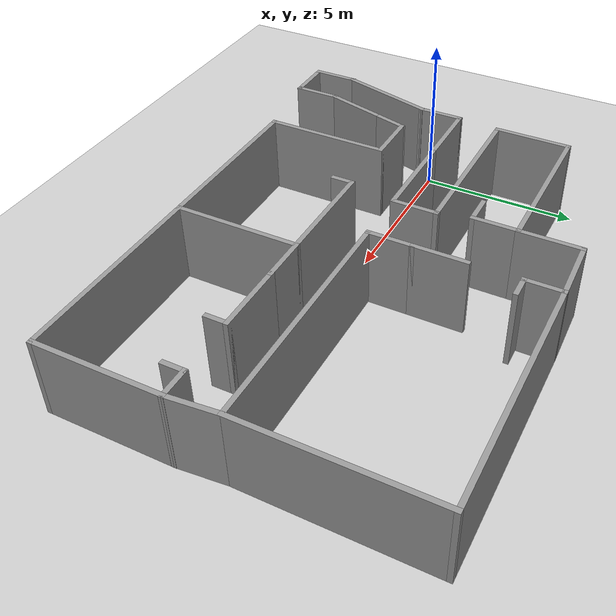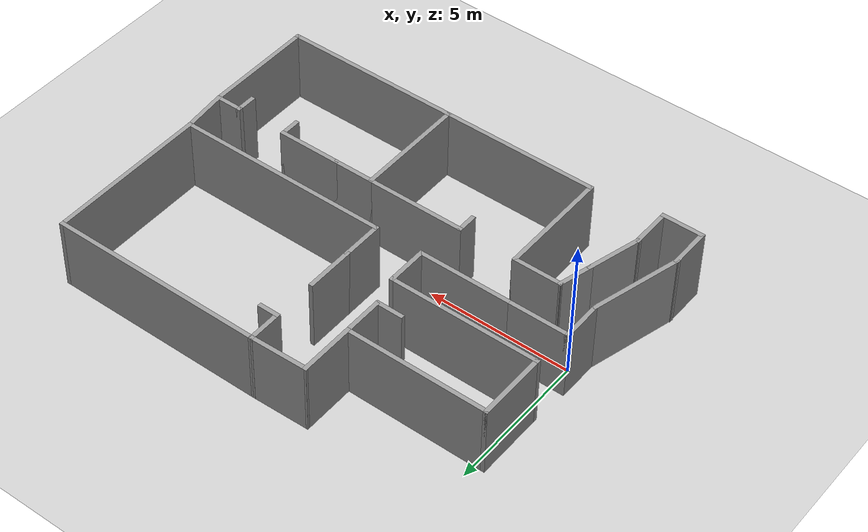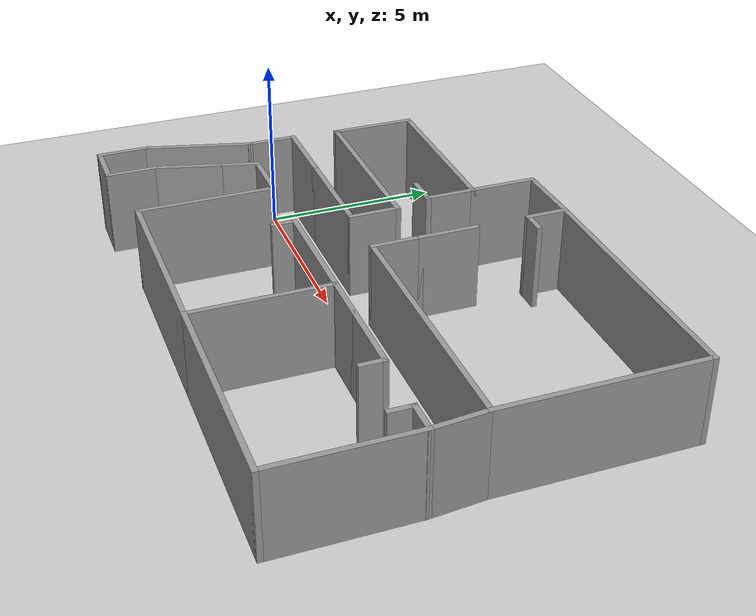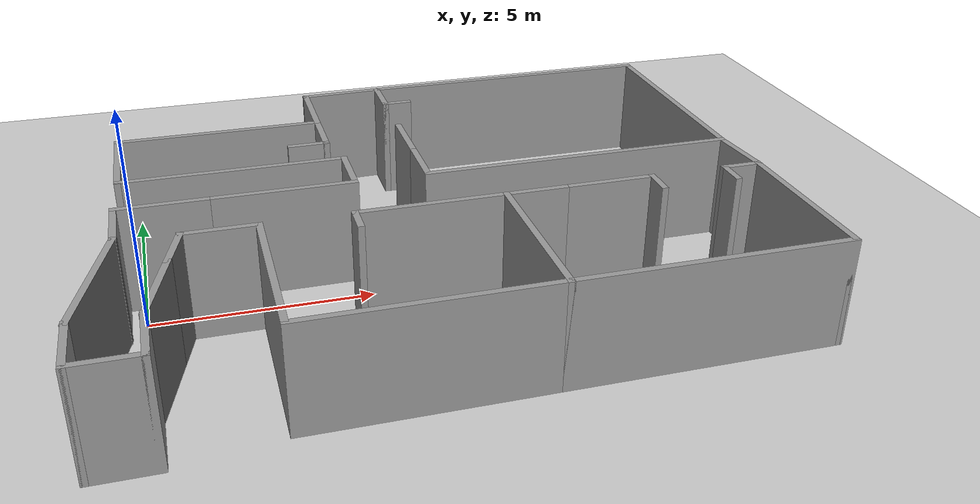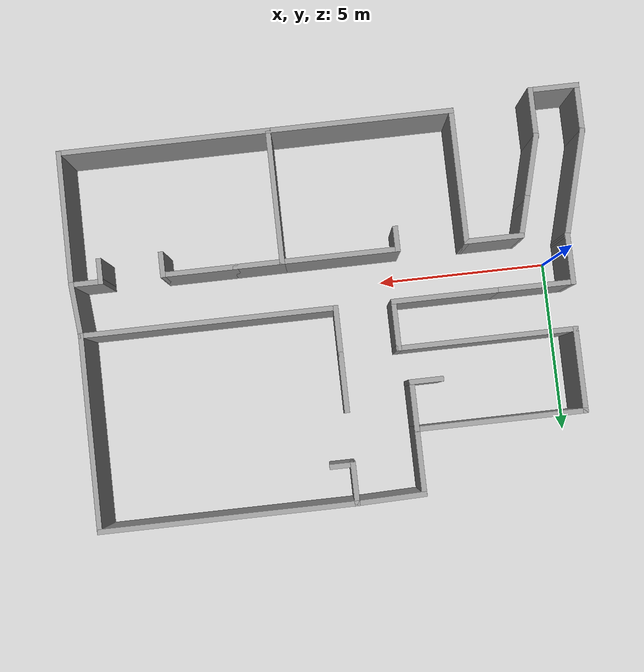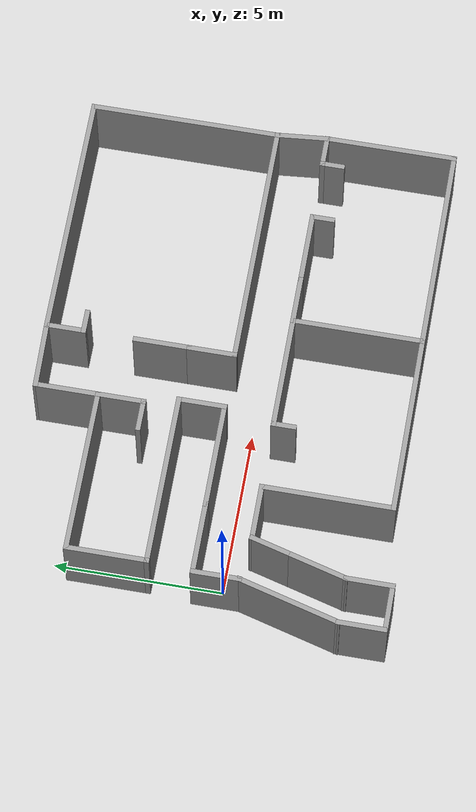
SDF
<sdf version="1.6">
 <world name="default">
  <light name="sun" type="directional">
   <pose>0 0 10 0 -0 0</pose>
   <diffuse>0.8 0.8 0.8 1</diffuse>
   <specular>0.2 0.2 0.2 1</specular>
   <attenuation>
    <range>1000</range>
    <constant>0.9</constant>
    <linear>0.01</linear>
    <quadratic>0.001</quadratic>
   </attenuation>
   <direction>-0.5 0.1 -0.9</direction>
  </light>
  <model name="ground_plane">
   <static>1</static>
   <link name="link">
    <collision name="collision">
     <geometry><plane><normal>0 0 1</normal><size>100 100</size></plane></geometry>
     <surface>
      <contact><collide_bitmask>65535</collide_bitmask></contact>
      <friction><ode><mu>100</mu><mu2>50</mu2></ode></friction>
     </surface>
    </collision>
    <visual name="visual">
     <cast_shadows>0</cast_shadows>
     <geometry><plane><normal>0 0 1</normal><size>100 100</size></plane></geometry>
     <material>
      <script><uri>file://media/materials/scripts/gazebo.material</uri><name>Gazebo/Grey</name></script>
     </material>
    </visual>
   </link>
  </model>
  <gravity>0 0 -9.8</gravity>
  <magnetic_field>6e-06 2.3e-05 -4.2e-05</magnetic_field>
  <atmosphere type="adiabatic"/>
  <physics name="default_physics" default="0" type="ode">
   <max_step_size>0.001</max_step_size>
   <real_time_factor>1</real_time_factor>
   <real_time_update_rate>1000</real_time_update_rate>
  </physics>
  <scene><ambient>0.4 0.4 0.4 1</ambient><background>0.7 0.7 0.7 1</background><shadows>1</shadows></scene>
  <audio><device>default</device></audio>
  <spherical_coordinates>
   <surface_model>EARTH_WGS84</surface_model>
   <latitude_deg>0</latitude_deg>
   <longitude_deg>0</longitude_deg>
   <elevation>0</elevation>
   <heading_deg>0</heading_deg>
  </spherical_coordinates>
  <model name="KGCOE_Training">
   <pose>6.37659 0.74694 0 0 -0 0</pose>
   <link name="Wall_0">
    <collision name="Wall_0_Collision">
     <geometry><box><size>1.5 0.15 2.5</size></box></geometry>
     <pose>0 0 1.25 0 -0 0</pose>
    </collision>
    <visual name="Wall_0_Visual">
     <pose>0 0 1.25 0 -0 0</pose>
     <geometry><box><size>1.5 0.15 2.5</size></box></geometry>
     <material>
      <script><uri>file://media/materials/scripts/gazebo.material</uri><name>Gazebo/Grey</name></script>
      <ambient>1 1 1 1</ambient>
     </material>
     <meta><layer>0</layer></meta>
    </visual>
    <pose>-7.57659 -4.97194 0 0 -0 -1.5708</pose>
   </link>
   <link name="Wall_1">
    <collision name="Wall_1_Collision">
     <geometry><box><size>1.5 0.15 2.5</size></box></geometry>
     <pose>0 0 1.25 0 -0 0</pose>
    </collision>
    <visual name="Wall_1_Visual">
     <pose>0 0 1.25 0 -0 0</pose>
     <geometry><box><size>1.5 0.15 2.5</size></box></geometry>
     <material>
      <script><uri>file://media/materials/scripts/gazebo.material</uri><name>Gazebo/Grey</name></script>
      <ambient>1 1 1 1</ambient>
     </material>
     <meta><layer>0</layer></meta>
    </visual>
    <pose>-6.90159 -5.64694 0 0 -0 0</pose>
   </link>
   <link name="Wall_11">
    <collision name="Wall_11_Collision">
     <geometry><box><size>1.75 0.15 2.5</size></box></geometry>
     <pose>0 0 1.25 0 -0 0</pose>
    </collision>
    <visual name="Wall_11_Visual">
     <pose>0 0 1.25 0 -0 0</pose>
     <geometry><box><size>1.75 0.15 2.5</size></box></geometry>
     <material>
      <script><uri>file://media/materials/scripts/gazebo.material</uri><name>Gazebo/Grey</name></script>
      <ambient>1 1 1 1</ambient>
     </material>
     <meta><layer>0</layer></meta>
    </visual>
    <pose>-4.66308 -1.44746 0 0 -0 0</pose>
   </link>
   <link name="Wall_12">
    <collision name="Wall_12_Collision">
     <geometry><box><size>4 0.15 2.5</size></box></geometry>
     <pose>0 0 1.25 0 -0 0</pose>
    </collision>
    <visual name="Wall_12_Visual">
     <pose>0 0 1.25 0 -0 0</pose>
     <geometry><box><size>4 0.15 2.5</size></box></geometry>
     <material>
      <script><uri>file://media/materials/scripts/gazebo.material</uri><name>Gazebo/Grey</name></script>
      <ambient>1 1 1 1</ambient>
     </material>
     <meta><layer>0</layer></meta>
    </visual>
    <pose>-3.86307 -3.37246 0 0 -0 -1.5708</pose>
   </link>
   <link name="Wall_13">
    <collision name="Wall_13_Collision">
     <geometry><box><size>5.5 0.15 2.5</size></box></geometry>
     <pose>0 0 1.25 0 -0 0</pose>
    </collision>
    <visual name="Wall_13_Visual">
     <pose>0 0 1.25 0 -0 0</pose>
     <geometry><box><size>5.5 0.15 2.5</size></box></geometry>
     <material>
      <script><uri>file://media/materials/scripts/gazebo.material</uri><name>Gazebo/Grey</name></script>
      <ambient>1 1 1 1</ambient>
     </material>
     <meta><layer>0</layer></meta>
    </visual>
    <pose>-1.18807 -5.29746 0 0 -0 0</pose>
   </link>
   <link name="Wall_14">
    <collision name="Wall_14_Collision">
     <geometry><box><size>4 0.15 2.5</size></box></geometry>
     <pose>0 0 1.25 0 -0 0</pose>
    </collision>
    <visual name="Wall_14_Visual">
     <pose>0 0 1.25 0 -0 0</pose>
     <geometry><box><size>4 0.15 2.5</size></box></geometry>
     <material>
      <script><uri>file://media/materials/scripts/gazebo.material</uri><name>Gazebo/Grey</name></script>
      <ambient>1 1 1 1</ambient>
     </material>
     <meta><layer>0</layer></meta>
    </visual>
    <pose>1.48693 -3.37246 0 0 -0 1.5708</pose>
   </link>
   <link name="Wall_15">
    <collision name="Wall_15_Collision">
     <geometry><box><size>3.5 0.15 2.5</size></box></geometry>
     <pose>0 0 1.25 0 -0 0</pose>
    </collision>
    <visual name="Wall_15_Visual">
     <pose>0 0 1.25 0 -0 0</pose>
     <geometry><box><size>3.5 0.15 2.5</size></box></geometry>
     <material>
      <script><uri>file://media/materials/scripts/gazebo.material</uri><name>Gazebo/Grey</name></script>
      <ambient>1 1 1 1</ambient>
     </material>
     <meta><layer>0</layer></meta>
    </visual>
    <pose>-0.188075 -1.44746 0 0 -0 3.14159</pose>
   </link>
   <link name="Wall_17">
    <collision name="Wall_17_Collision">
     <geometry><box><size>0.75 0.15 2.5</size></box></geometry>
     <pose>0 0 1.25 0 -0 0</pose>
    </collision>
    <visual name="Wall_17_Visual">
     <pose>0 0 1.25 0 -0 0</pose>
     <geometry><box><size>0.75 0.15 2.5</size></box></geometry>
     <material>
      <script><uri>file://media/materials/scripts/gazebo.material</uri><name>Gazebo/Grey</name></script>
      <ambient>1 1 1 1</ambient>
     </material>
     <meta><layer>0</layer></meta>
    </visual>
    <pose>-1.86308 -1.74746 0 0 -0 -1.5708</pose>
   </link>
   <link name="Wall_19">
    <collision name="Wall_19_Collision">
     <geometry><box><size>3.25 0.15 2.5</size></box></geometry>
     <pose>0 0 1.25 0 -0 0</pose>
    </collision>
    <visual name="Wall_19_Visual">
     <pose>0 0 1.25 0 -0 0</pose>
     <geometry><box><size>3.25 0.15 2.5</size></box></geometry>
     <material>
      <script><uri>file://media/materials/scripts/gazebo.material</uri><name>Gazebo/Grey</name></script>
      <ambient>1 1 1 1</ambient>
     </material>
     <meta><layer>0</layer></meta>
    </visual>
    <pose>-3.12425 0.04743 0 0 -0 0</pose>
   </link>
   <link name="Wall_2">
    <collision name="Wall_2_Collision">
     <geometry><box><size>1.5 0.15 2.5</size></box></geometry>
     <pose>0 0 1.25 0 -0 0</pose>
    </collision>
    <visual name="Wall_2_Visual">
     <pose>0 0 1.25 0 -0 0</pose>
     <geometry><box><size>1.5 0.15 2.5</size></box></geometry>
     <material>
      <script><uri>file://media/materials/scripts/gazebo.material</uri><name>Gazebo/Grey</name></script>
      <ambient>1 1 1 1</ambient>
     </material>
     <meta><layer>0</layer></meta>
    </visual>
    <pose>-6.22659 -4.97194 0 0 -0 1.5708</pose>
   </link>
   <link name="Wall_20">
    <collision name="Wall_20_Collision">
     <geometry><box><size>1.5 0.15 2.5</size></box></geometry>
     <pose>0 0 1.25 0 -0 0</pose>
    </collision>
    <visual name="Wall_20_Visual">
     <pose>0 0 1.25 0 -0 0</pose>
     <geometry><box><size>1.5 0.15 2.5</size></box></geometry>
     <material>
      <script><uri>file://media/materials/scripts/gazebo.material</uri><name>Gazebo/Grey</name></script>
      <ambient>1 1 1 1</ambient>
     </material>
     <meta><layer>0</layer></meta>
    </visual>
    <pose>-1.57425 0.72243 0 0 -0 1.5708</pose>
   </link>
   <link name="Wall_21">
    <collision name="Wall_21_Collision">
     <geometry><box><size>5.25 0.15 2.5</size></box></geometry>
     <pose>0 0 1.25 0 -0 0</pose>
    </collision>
    <visual name="Wall_21_Visual">
     <pose>0 0 1.25 0 -0 0</pose>
     <geometry><box><size>5.25 0.15 2.5</size></box></geometry>
     <material>
      <script><uri>file://media/materials/scripts/gazebo.material</uri><name>Gazebo/Grey</name></script>
      <ambient>1 1 1 1</ambient>
     </material>
     <meta><layer>0</layer></meta>
    </visual>
    <pose>-4.12425 1.39743 0 0 -0 3.14159</pose>
   </link>
   <link name="Wall_22">
    <collision name="Wall_22_Collision">
     <geometry><box><size>2.5 0.15 2.5</size></box></geometry>
     <pose>0 0 1.25 0 -0 0</pose>
    </collision>
    <visual name="Wall_22_Visual">
     <pose>0 0 1.25 0 -0 0</pose>
     <geometry><box><size>2.5 0.15 2.5</size></box></geometry>
     <material>
      <script><uri>file://media/materials/scripts/gazebo.material</uri><name>Gazebo/Grey</name></script>
      <ambient>1 1 1 1</ambient>
     </material>
     <meta><layer>0</layer></meta>
    </visual>
    <pose>-6.67425 2.57243 0 0 -0 1.5708</pose>
   </link>
   <link name="Wall_23">
    <collision name="Wall_23_Collision">
     <geometry><box><size>5 0.15 2.5</size></box></geometry>
     <pose>0 0 1.25 0 -0 0</pose>
    </collision>
    <visual name="Wall_23_Visual">
     <pose>0 0 1.25 0 -0 0</pose>
     <geometry><box><size>5 0.15 2.5</size></box></geometry>
     <material>
      <script><uri>file://media/materials/scripts/gazebo.material</uri><name>Gazebo/Grey</name></script>
      <ambient>1 1 1 1</ambient>
     </material>
     <meta><layer>0</layer></meta>
    </visual>
    <pose>-4.24925 3.74743 0 0 -0 0</pose>
   </link>
   <link name="Wall_24">
    <collision name="Wall_24_Collision">
     <geometry><box><size>1.5 0.15 2.5</size></box></geometry>
     <pose>0 0 1.25 0 -0 0</pose>
    </collision>
    <visual name="Wall_24_Visual">
     <pose>0 0 1.25 0 -0 0</pose>
     <geometry><box><size>1.5 0.15 2.5</size></box></geometry>
     <material>
      <script><uri>file://media/materials/scripts/gazebo.material</uri><name>Gazebo/Grey</name></script>
      <ambient>1 1 1 1</ambient>
     </material>
     <meta><layer>0</layer></meta>
    </visual>
    <pose>-1.82425 3.07243 0 0 -0 -1.5708</pose>
   </link>
   <link name="Wall_26">
    <collision name="Wall_26_Collision">
     <geometry><box><size>1.5 0.15 2.5</size></box></geometry>
     <pose>0 0 1.25 0 -0 0</pose>
    </collision>
    <visual name="Wall_26_Visual">
     <pose>0 0 1.25 0 -0 0</pose>
     <geometry><box><size>1.5 0.15 2.5</size></box></geometry>
     <material>
      <script><uri>file://media/materials/scripts/gazebo.material</uri><name>Gazebo/Grey</name></script>
      <ambient>1 1 1 1</ambient>
     </material>
     <meta><layer>0</layer></meta>
    </visual>
    <pose>0.100346 0.720105 0 0 -0 -1.5708</pose>
   </link>
   <link name="Wall_27">
    <collision name="Wall_27_Collision">
     <geometry><box><size>7.5 0.15 2.5</size></box></geometry>
     <pose>0 0 1.25 0 -0 0</pose>
    </collision>
    <visual name="Wall_27_Visual">
     <pose>0 0 1.25 0 -0 0</pose>
     <geometry><box><size>7.5 0.15 2.5</size></box></geometry>
     <material>
      <script><uri>file://media/materials/scripts/gazebo.material</uri><name>Gazebo/Grey</name></script>
      <ambient>1 1 1 1</ambient>
     </material>
     <meta><layer>0</layer></meta>
    </visual>
    <pose>3.77535 0.045105 0 0 -0 0</pose>
   </link>
   <link name="Wall_28">
    <collision name="Wall_28_Collision">
     <geometry><box><size>5.75 0.15 2.5</size></box></geometry>
     <pose>0 0 1.25 0 -0 0</pose>
    </collision>
    <visual name="Wall_28_Visual">
     <pose>0 0 1.25 0 -0 0</pose>
     <geometry><box><size>5.75 0.15 2.5</size></box></geometry>
     <material>
      <script><uri>file://media/materials/scripts/gazebo.material</uri><name>Gazebo/Grey</name></script>
      <ambient>1 1 1 1</ambient>
     </material>
     <meta><layer>0</layer></meta>
    </visual>
    <pose>7.45035 2.84511 0 0 -0 1.5708</pose>
   </link>
   <link name="Wall_29">
    <collision name="Wall_29_Collision">
     <geometry><box><size>7.5 0.15 2.5</size></box></geometry>
     <pose>0 0 1.25 0 -0 0</pose>
    </collision>
    <visual name="Wall_29_Visual">
     <pose>0 0 1.25 0 -0 0</pose>
     <geometry><box><size>7.5 0.15 2.5</size></box></geometry>
     <material>
      <script><uri>file://media/materials/scripts/gazebo.material</uri><name>Gazebo/Grey</name></script>
      <ambient>1 1 1 1</ambient>
     </material>
     <meta><layer>0</layer></meta>
    </visual>
    <pose>3.77535 5.64511 0 0 -0 3.14159</pose>
   </link>
   <link name="Wall_3">
    <collision name="Wall_3_Collision">
     <geometry><box><size>2 0.15 2.5</size></box></geometry>
     <pose>0 0 1.25 0 -0 0</pose>
    </collision>
    <visual name="Wall_3_Visual">
     <pose>0 0 1.25 0 -0 0</pose>
     <geometry><box><size>2 0.15 2.5</size></box></geometry>
     <material>
      <script><uri>file://media/materials/scripts/gazebo.material</uri><name>Gazebo/Grey</name></script>
      <ambient>1 1 1 1</ambient>
     </material>
     <meta><layer>0</layer></meta>
    </visual>
    <pose>-5.98718 -3.40346 0 0 -0 1.309</pose>
   </link>
   <link name="Wall_30">
    <collision name="Wall_30_Collision">
     <geometry><box><size>1.25 0.15 2.5</size></box></geometry>
     <pose>0 0 1.25 0 -0 0</pose>
    </collision>
    <visual name="Wall_30_Visual">
     <pose>0 0 1.25 0 -0 0</pose>
     <geometry><box><size>1.25 0.15 2.5</size></box></geometry>
     <material>
      <script><uri>file://media/materials/scripts/gazebo.material</uri><name>Gazebo/Grey</name></script>
      <ambient>1 1 1 1</ambient>
     </material>
     <meta><layer>0</layer></meta>
    </visual>
    <pose>0.100346 5.09511 0 0 -0 -1.5708</pose>
   </link>
   <link name="Wall_32">
    <collision name="Wall_32_Collision">
     <geometry><box><size>1.75 0.15 2.5</size></box></geometry>
     <pose>0 0 1.25 0 -0 0</pose>
    </collision>
    <visual name="Wall_32_Visual">
     <pose>0 0 1.25 0 -0 0</pose>
     <geometry><box><size>1.75 0.15 2.5</size></box></geometry>
     <material>
      <script><uri>file://media/materials/scripts/gazebo.material</uri><name>Gazebo/Grey</name></script>
      <ambient>1 1 1 1</ambient>
     </material>
     <meta><layer>0</layer></meta>
    </visual>
    <pose>0.100346 2.1951 0 0 -0 1.5708</pose>
   </link>
   <link name="Wall_34">
    <collision name="Wall_34_Collision">
     <geometry><box><size>0.75 0.15 2.5</size></box></geometry>
     <pose>0 0 1.25 0 -0 0</pose>
    </collision>
    <visual name="Wall_34_Visual">
     <pose>0 0 1.25 0 -0 0</pose>
     <geometry><box><size>0.75 0.15 2.5</size></box></geometry>
     <material>
      <script><uri>file://media/materials/scripts/gazebo.material</uri><name>Gazebo/Grey</name></script>
      <ambient>1 1 1 1</ambient>
     </material>
     <meta><layer>0</layer></meta>
    </visual>
    <pose>0.400346 4.54511 0 0 -0 0</pose>
   </link>
   <link name="Wall_36">
    <collision name="Wall_36_Collision">
     <geometry><box><size>1 0.15 2.5</size></box></geometry>
     <pose>0 0 1.25 0 -0 0</pose>
    </collision>
    <visual name="Wall_36_Visual">
     <pose>0 0 1.25 0 -0 0</pose>
     <geometry><box><size>1 0.15 2.5</size></box></geometry>
     <material>
      <script><uri>file://media/materials/scripts/gazebo.material</uri><name>Gazebo/Grey</name></script>
      <ambient>1 1 1 1</ambient>
     </material>
     <meta><layer>0</layer></meta>
    </visual>
    <pose>-2.24925 2.39743 0 0 -0 3.14159</pose>
   </link>
   <link name="Wall_38">
    <collision name="Wall_38_Collision">
     <geometry><box><size>2 0.15 2.5</size></box></geometry>
     <pose>0 0 1.25 0 -0 0</pose>
    </collision>
    <visual name="Wall_38_Visual">
     <pose>0 0 1.25 0 -0 0</pose>
     <geometry><box><size>2 0.15 2.5</size></box></geometry>
     <material>
      <script><uri>file://media/materials/scripts/gazebo.material</uri><name>Gazebo/Grey</name></script>
      <ambient>1 1 1 1</ambient>
     </material>
     <meta><layer>0</layer></meta>
    </visual>
    <pose>-1.82425 4.67243 0 0 -0 1.5708</pose>
   </link>
   <link name="Wall_39">
    <collision name="Wall_39_Collision">
     <geometry><box><size>2.07519 0.15 2.5</size></box></geometry>
     <pose>0 0 1.25 0 -0 0</pose>
    </collision>
    <visual name="Wall_39_Visual">
     <pose>0 0 1.25 0 -0 0</pose>
     <geometry><box><size>2.07519 0.15 2.5</size></box></geometry>
     <material>
      <script><uri>file://media/materials/scripts/gazebo.material</uri><name>Gazebo/Grey</name></script>
      <ambient>1 1 1 1</ambient>
     </material>
     <meta><layer>0</layer></meta>
    </visual>
    <pose>-0.861953 5.62127 0 0 -0 0.024766</pose>
   </link>
   <link name="Wall_4">
    <collision name="Wall_4_Collision">
     <geometry><box><size>1.25 0.15 2.5</size></box></geometry>
     <pose>0 0 1.25 0 -0 0</pose>
    </collision>
    <visual name="Wall_4_Visual">
     <pose>0 0 1.25 0 -0 0</pose>
     <geometry><box><size>1.25 0.15 2.5</size></box></geometry>
     <material>
      <script><uri>file://media/materials/scripts/gazebo.material</uri><name>Gazebo/Grey</name></script>
      <ambient>1 1 1 1</ambient>
     </material>
     <meta><layer>0</layer></meta>
    </visual>
    <pose>-5.60543 -1.97872 0 0 -0 1.309</pose>
   </link>
   <link name="Wall_41">
    <collision name="Wall_41_Collision">
     <geometry><box><size>1.5 0.15 2.5</size></box></geometry>
     <pose>0 0 1.25 0 -0 0</pose>
    </collision>
    <visual name="Wall_41_Visual">
     <pose>0 0 1.25 0 -0 0</pose>
     <geometry><box><size>1.5 0.15 2.5</size></box></geometry>
     <material>
      <script><uri>file://media/materials/scripts/gazebo.material</uri><name>Gazebo/Grey</name></script>
      <ambient>1 1 1 1</ambient>
     </material>
     <meta><layer>0</layer></meta>
    </visual>
    <pose>2.16193 -1.44746 0 0 -0 0</pose>
   </link>
   <link name="Wall_43">
    <collision name="Wall_43_Collision">
     <geometry><box><size>6.25 0.15 2.5</size></box></geometry>
     <pose>0 0 1.25 0 -0 0</pose>
    </collision>
    <visual name="Wall_43_Visual">
     <pose>0 0 1.25 0 -0 0</pose>
     <geometry><box><size>6.25 0.15 2.5</size></box></geometry>
     <material>
      <script><uri>file://media/materials/scripts/gazebo.material</uri><name>Gazebo/Grey</name></script>
      <ambient>1 1 1 1</ambient>
     </material>
     <meta><layer>0</layer></meta>
    </visual>
    <pose>4.53693 -5.29746 0 0 -0 0</pose>
   </link>
   <link name="Wall_44">
    <collision name="Wall_44_Collision">
     <geometry><box><size>4 0.15 2.5</size></box></geometry>
     <pose>0 0 1.25 0 -0 0</pose>
    </collision>
    <visual name="Wall_44_Visual">
     <pose>0 0 1.25 0 -0 0</pose>
     <geometry><box><size>4 0.15 2.5</size></box></geometry>
     <material>
      <script><uri>file://media/materials/scripts/gazebo.material</uri><name>Gazebo/Grey</name></script>
      <ambient>1 1 1 1</ambient>
     </material>
     <meta><layer>0</layer></meta>
    </visual>
    <pose>7.58692 -3.37246 0 0 -0 1.5708</pose>
   </link>
   <link name="Wall_45">
    <collision name="Wall_45_Collision">
     <geometry><box><size>1 0.15 2.5</size></box></geometry>
     <pose>0 0 1.25 0 -0 0</pose>
    </collision>
    <visual name="Wall_45_Visual">
     <pose>0 0 1.25 0 -0 0</pose>
     <geometry><box><size>1 0.15 2.5</size></box></geometry>
     <material>
      <script><uri>file://media/materials/scripts/gazebo.material</uri><name>Gazebo/Grey</name></script>
      <ambient>1 1 1 1</ambient>
     </material>
     <meta><layer>0</layer></meta>
    </visual>
    <pose>7.16193 -1.44746 0 0 -0 3.14159</pose>
   </link>
   <link name="Wall_47">
    <collision name="Wall_47_Collision">
     <geometry><box><size>2.25 0.15 2.5</size></box></geometry>
     <pose>0 0 1.25 0 -0 0</pose>
    </collision>
    <visual name="Wall_47_Visual">
     <pose>0 0 1.25 0 -0 0</pose>
     <geometry><box><size>2.25 0.15 2.5</size></box></geometry>
     <material>
      <script><uri>file://media/materials/scripts/gazebo.material</uri><name>Gazebo/Grey</name></script>
      <ambient>1 1 1 1</ambient>
     </material>
     <meta><layer>0</layer></meta>
    </visual>
    <pose>3.88693 -1.44746 0 0 -0 0</pose>
   </link>
   <link name="Wall_48">
    <collision name="Wall_48_Collision">
     <geometry><box><size>0.75 0.15 2.5</size></box></geometry>
     <pose>0 0 1.25 0 -0 0</pose>
    </collision>
    <visual name="Wall_48_Visual">
     <pose>0 0 1.25 0 -0 0</pose>
     <geometry><box><size>0.75 0.15 2.5</size></box></geometry>
     <material>
      <script><uri>file://media/materials/scripts/gazebo.material</uri><name>Gazebo/Grey</name></script>
      <ambient>1 1 1 1</ambient>
     </material>
     <meta><layer>0</layer></meta>
    </visual>
    <pose>4.93692 -1.74746 0 0 -0 -1.5708</pose>
   </link>
   <link name="Wall_50">
    <collision name="Wall_50_Collision">
     <geometry><box><size>0.75 0.15 2.5</size></box></geometry>
     <pose>0 0 1.25 0 -0 0</pose>
    </collision>
    <visual name="Wall_50_Visual">
     <pose>0 0 1.25 0 -0 0</pose>
     <geometry><box><size>0.75 0.15 2.5</size></box></geometry>
     <material>
      <script><uri>file://media/materials/scripts/gazebo.material</uri><name>Gazebo/Grey</name></script>
      <ambient>1 1 1 1</ambient>
     </material>
     <meta><layer>0</layer></meta>
    </visual>
    <pose>6.73693 -1.74746 0 0 -0 -1.5708</pose>
   </link>
   <link name="Wall_52">
    <collision name="Wall_52_Collision">
     <geometry><box><size>1.6488 0.15 2.5</size></box></geometry>
     <pose>0 0 1.25 0 -0 0</pose>
    </collision>
    <visual name="Wall_52_Visual">
     <pose>0 0 1.25 0 -0 0</pose>
     <geometry><box><size>1.6488 0.15 2.5</size></box></geometry>
     <material>
      <script><uri>file://media/materials/scripts/gazebo.material</uri><name>Gazebo/Grey</name></script>
      <ambient>1 1 1 1</ambient>
     </material>
     <meta><layer>0</layer></meta>
    </visual>
    <pose>7.51863 -0.701177 0 0 -0 -1.47954</pose>
   </link>
   <link name="Wall_7">
    <collision name="Wall_7_Collision">
     <geometry><box><size>3.25 0.15 2.5</size></box></geometry>
     <pose>0 0 1.25 0 -0 0</pose>
    </collision>
    <visual name="Wall_7_Visual">
     <pose>0 0 1.25 0 -0 0</pose>
     <geometry><box><size>3.25 0.15 2.5</size></box></geometry>
     <material>
      <script><uri>file://media/materials/scripts/gazebo.material</uri><name>Gazebo/Grey</name></script>
      <ambient>1 1 1 1</ambient>
     </material>
     <meta><layer>0</layer></meta>
    </visual>
    <pose>-7.17542 -2.79976 0 0 -0 1.309</pose>
   </link>
   <link name="Wall_8">
    <collision name="Wall_8_Collision">
     <geometry><box><size>1.5 0.15 2.5</size></box></geometry>
     <pose>0 0 1.25 0 -0 0</pose>
    </collision>
    <visual name="Wall_8_Visual">
     <pose>0 0 1.25 0 -0 0</pose>
     <geometry><box><size>1.5 0.15 2.5</size></box></geometry>
     <material>
      <script><uri>file://media/materials/scripts/gazebo.material</uri><name>Gazebo/Grey</name></script>
      <ambient>1 1 1 1</ambient>
     </material>
     <meta><layer>0</layer></meta>
    </visual>
    <pose>-6.77425 -0.62757 0 0 -0 1.5708</pose>
   </link>
   <link name="Wall_9">
    <collision name="Wall_9_Collision">
     <geometry><box><size>2.25 0.15 2.5</size></box></geometry>
     <pose>0 0 1.25 0 -0 0</pose>
    </collision>
    <visual name="Wall_9_Visual">
     <pose>0 0 1.25 0 -0 0</pose>
     <geometry><box><size>2.25 0.15 2.5</size></box></geometry>
     <material>
      <script><uri>file://media/materials/scripts/gazebo.material</uri><name>Gazebo/Grey</name></script>
      <ambient>1 1 1 1</ambient>
     </material>
     <meta><layer>0</layer></meta>
    </visual>
    <pose>-5.72425 0.04743 0 0 -0 0</pose>
   </link>
   <static>1</static>
  </model>
 </world>
</sdf>
